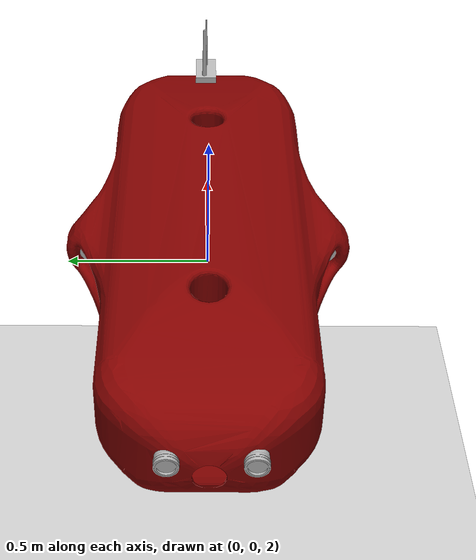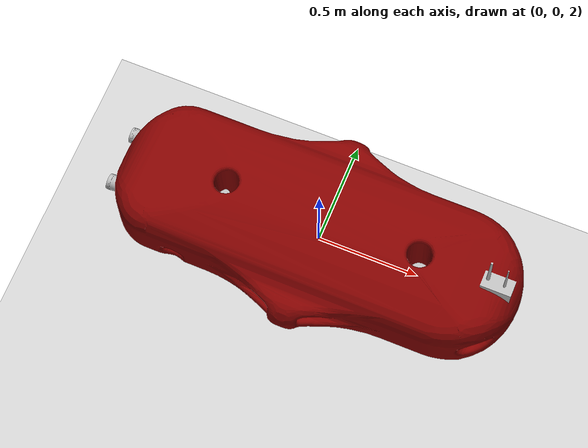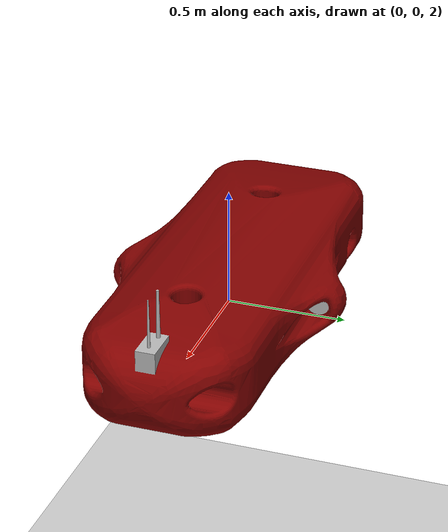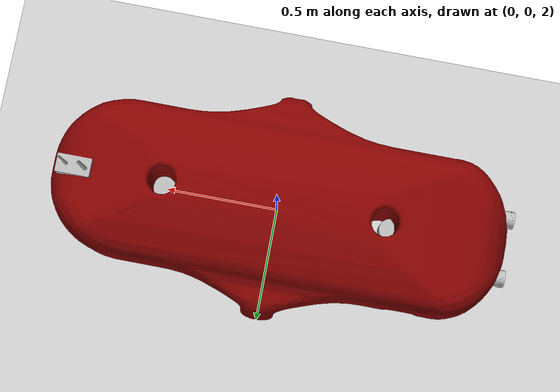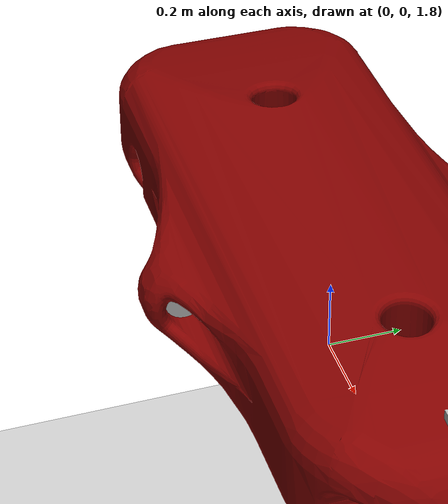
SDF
<?xml version="1.0" ?>
<sdf version="1.4">
	<world name="underwater">
		<include>
			<uri>model://sun</uri>
		</include>

		<include>
			<uri>model://ground_plane</uri>
		</include>

		<include>
			<uri>model://flatfish</uri>
		</include>

        <plugin name="underwater" filename="libgazebo_underwater.so">
            <model_name>flatfish</model_name> <!--Model to apply buonyancy -->
            <link_name>flatfish_body</link_name>
            <!-- Model dimensions in meters
                 The model is approximaged to be a cube with the given dimensions -->
            <size>1.15 0.6 0.5</size>
            <water_level>3</water_level>   <!-- This variable defines water depth on origin -->
            <viscous_damping>50</viscous_damping>
        </plugin>
	</world>
</sdf>

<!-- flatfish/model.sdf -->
<sdf version="1.4">
	<model name="flatfish">
		<pose>0 0 2.0 0 0 0</pose>

		<link name="flatfish_body">
			<visual name="visual">
				<geometry>
					<mesh>
					<uri>model://flatfish/flatfish_05.dae</uri>
					</mesh>
				</geometry>
			</visual>
			<collision name="flatfish_collision">
				<geometry>
					<mesh>
					<uri>model://flatfish/collision.STL</uri>
					</mesh>
				</geometry>
			</collision>
			<inertial>
			<pose>0 0 0 0 0 0</pose>
                <inertia>
                    <ixx>1</ixx>
                    <ixy>1</ixy>
                    <ixz>0</ixz>
                    <iyy>1</iyy>
                    <iyz>0</iyz>
                    <izz>1</izz>
                </inertia>
                <mass>300</mass>
			</inertial>
		</link>

        <link name="thruster_0">
			<visual name="visual_thruster_0">
				<pose>0 0.4 0.085 0 1.5708 0</pose>
				<geometry>
					<cylinder>
						<radius>0.05</radius>
						<length>0.1</length>
					</cylinder>
				</geometry>
			</visual>
			<collision name="collision_thruster_0">
			    <pose>0 0.4 0.085 0 1.5708 0</pose>
			    <geometry>
					<cylinder>
						<radius>0.05</radius>
						<length>0.1</length>
					</cylinder>
				</geometry>
			</collision>
			<inertial>
			    <pose>0 0 0 0 0 0</pose>
                <inertia>
                    <ixx>1</ixx>
                    <ixy>0</ixy>
                    <ixz>0</ixz>
                    <iyy>1</iyy>
                    <iyz>0</iyz>
                    <izz>1</izz>
                </inertia>
                <mass>5</mass>
			</inertial>
		</link>
		<joint type="revolute" name="joint_thruster_0">
		    <pose>0 0.4 0.085 0 1.5708 0</pose>
		    <child>thruster_0</child>
		    <parent>flatfish_body</parent>
		    <axis><xyz>0 0 0</xyz></axis>
		</joint>

        <link name="thruster_1">
			<visual name="visual_thruster_1">
				<pose>0 -0.4 0.085 0 1.5708 0</pose>
				<geometry>
					<cylinder>
						<radius>0.05</radius>
						<length>0.1</length>
					</cylinder>
				</geometry>
			</visual>
			<collision name="collision_thruster_1">
			    <pose>0 -0.4 0.085 0 1.5708 0</pose>
			    <geometry>
					<cylinder>
						<radius>0.05</radius>
						<length>0.1</length>
					</cylinder>
				</geometry>
			</collision>
			<inertial>
			    <pose>0 0 0 0 0 0</pose>
                <inertia>
                    <ixx>1</ixx>
                    <ixy>0</ixy>
                    <ixz>0</ixz>
                    <iyy>1</iyy>
                    <iyz>0</iyz>
                    <izz>1</izz>
                </inertia>
                <mass>5</mass>
			</inertial>
		</link>
		<joint type="revolute" name="joint_thruster_1">
		    <pose>0 -0.4 0.085 0 1.5708 0</pose>
		    <child>thruster_1</child>
		    <parent>flatfish_body</parent>
		    <axis><xyz>0 0 0</xyz></axis>
		</joint>

        <link name="thruster_2">
			<visual name="visual_thruster_2">
                <pose>-0.875 0.0 0.025 1.5708 0 0</pose>
				<geometry>
					<cylinder>
						<radius>0.05</radius>
						<length>0.1</length>
					</cylinder>
				</geometry>
			</visual>
			<collision name="collision_thruster_2">
			    <pose>-0.875 0.0 0.025 1.5708 0 0</pose>
			    <geometry>
					<cylinder>
						<radius>0.05</radius>
						<length>0.1</length>
					</cylinder>
				</geometry>
			</collision>
			<inertial>
			    <pose>0 0 0 0 0 0</pose>
                <inertia>
                    <ixx>1</ixx>
                    <ixy>0</ixy>
                    <ixz>0</ixz>
                    <iyy>1</iyy>
                    <iyz>0</iyz>
                    <izz>1</izz>
                </inertia>
                <mass>5</mass>
			</inertial>
		</link>
		<joint type="revolute" name="joint_thruster_2">
		    <pose>-0.875 0.0 0.025 1.5708 0 0</pose>
		    <child>thruster_2</child>
		    <parent>flatfish_body</parent>
		    <axis><xyz>0 0 0</xyz></axis>
		</joint>

        <link name="thruster_3">
			<visual name="visual_thruster_3">
                <pose>0.875 0.0 0.025 1.5708 0 0</pose>
				<geometry>
					<cylinder>
						<radius>0.05</radius>
						<length>0.1</length>
					</cylinder>
				</geometry>
			</visual>
			<collision name="collision_thruster_3">
			   <pose>0.875 0.0 0.025 1.5708 0 0</pose>
			    <geometry>
					<cylinder>
						<radius>0.05</radius>
						<length>0.1</length>
					</cylinder>
				</geometry>
			</collision>
			<inertial>
			    <pose>0 0 0 0 0 0</pose>
                <inertia>
                    <ixx>1</ixx>
                    <ixy>0</ixy>
                    <ixz>0</ixz>
                    <iyy>1</iyy>
                    <iyz>0</iyz>
                    <izz>1</izz>
                </inertia>
                <mass>5</mass>
			</inertial>
		</link>
		<joint type="revolute" name="joint_thruster_3">
		    <pose>0.875 0.0 0.025 1.5708 0 0</pose>
		    <child>thruster_3</child>
		    <parent>flatfish_body</parent>
		    <axis><xyz>0 0 0</xyz></axis>
		</joint>

        <link name="thruster_4">
			<visual name="visual_thruster_4">
				<pose>0.51 0 0 0 0 0</pose>
				<geometry>
					<cylinder>
						<radius>0.05</radius>
						<length>0.1</length>
					</cylinder>
				</geometry>
			</visual>
			<collision name="collision_thruster_4">
			    <pose>0.51 0 0 0 0 0</pose>
			    <geometry>
					<cylinder>
						<radius>0.05</radius>
						<length>0.1</length>
					</cylinder>
				</geometry>
			</collision>
			<inertial>
			    <pose>0 0 0 0 0 0</pose>
                <inertia>
                    <ixx>1</ixx>
                    <ixy>0</ixy>
                    <ixz>0</ixz>
                    <iyy>1</iyy>
                    <iyz>0</iyz>
                    <izz>1</izz>
                </inertia>
                <mass>5</mass>
			</inertial>
		</link>
		<joint type="revolute" name="joint_thruster_4">
		    <pose>0.51 0 0 0 0 0</pose>
		    <child>thruster_4</child>
		    <parent>flatfish_body</parent>
		    <axis><xyz>0 0 0</xyz></axis>
		</joint>

        <link name="thruster_5">
			<visual name="visual_thruster_5">
				<pose>-0.51 0 0 0 0 0</pose>
				<geometry>
					<cylinder>
						<radius>0.05</radius>
						<length>0.1</length>
					</cylinder>
				</geometry>
			</visual>
			<collision name="collision_thruster_5">
			    <pose>-0.51 0 0 0 0 0</pose>
			    <geometry>
					<cylinder>
						<radius>0.05</radius>
						<length>0.1</length>
					</cylinder>
				</geometry>
			</collision>
			<inertial>
			    <pose>0 0 0 0 0 0</pose>
                <inertia>
                    <ixx>1</ixx>
                    <ixy>0</ixy>
                    <ixz>0</ixz>
                    <iyy>1</iyy>
                    <iyz>0</iyz>
                    <izz>1</izz>
                </inertia>
                <mass>5</mass>
			</inertial>
		</link>
		<joint type="revolute" name="joint_thruster_5">
		    <pose>-0.51 0 0 0 0 0</pose>
		    <child>thruster_5</child>
		    <parent>flatfish_body</parent>
		    <axis><xyz>0 0 0</xyz></axis>
		</joint>

	</model>
</sdf>
